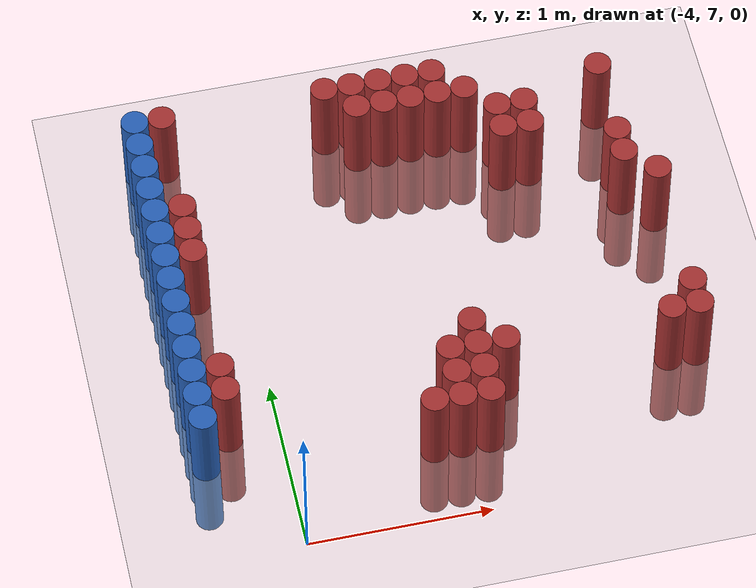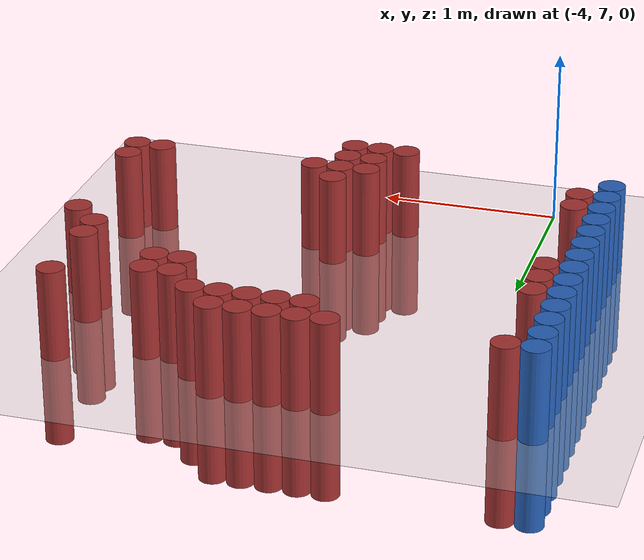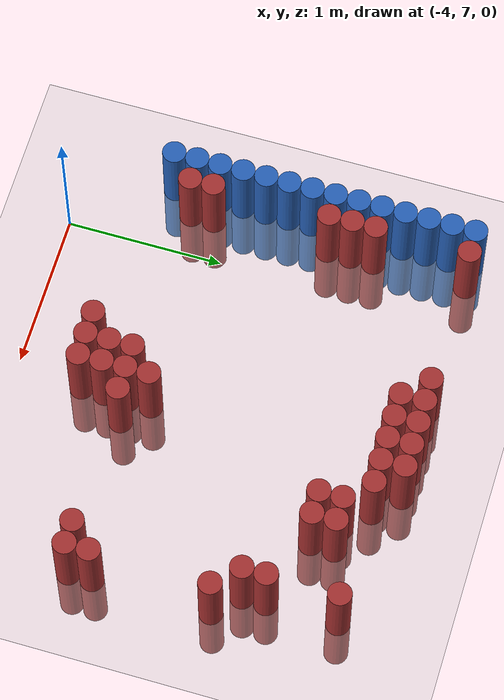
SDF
<sdf version="1.6">
 <world name="default">
  <model name="ground_plane">
   <static>1</static>
   <link name="link">
    <collision name="collision">
     <geometry><plane><normal>0 0 1</normal><size>100 100</size></plane></geometry>
     <surface><friction><ode><mu>100</mu><mu2>50</mu2></ode></friction></surface>
    </collision>
    <visual name="visual">
     <cast_shadows>0</cast_shadows>
     <geometry><plane><normal>0 0 1</normal><size>100 100</size></plane></geometry>
     <material>
      <script><uri>file://media/materials/scripts/gazebo.material</uri><name>Gazebo/Grey</name></script>
     </material>
    </visual>
   </link>
  </model>
  <model name="unit_cylinder_112">
   <static>1</static>
   <pose>-4.425000 7.575000 0.000000 0.000000 0.000000 0.000000</pose>
   <link name="link">
    <inertial>
     <mass>1</mass>
     <inertia><ixx>0.145833</ixx><ixy>0</ixy><ixz>0</ixz><iyy>0.145833</iyy><iyz>0</iyz><izz>0.125</izz></inertia>
    </inertial>
    <collision name="collision">
     <geometry><cylinder><radius>0.075000</radius><length>1</length></cylinder></geometry>
    </collision>
    <visual name="visual">
     <geometry><cylinder><radius>0.075000</radius><length>1</length></cylinder></geometry>
     <material>
      <ambient>0.152000 0.379000 0.720000 1</ambient>
      <diffuse>0.152000 0.379000 0.720000 1</diffuse>
     </material>
     <material>
      <script><name>Gazebo/Grey</name><uri>file://media/materials/scripts/gazebo.material</uri></script>
     </material>
    </visual>
   </link>
  </model>
  <model name="unit_cylinder_113">
   <static>1</static>
   <pose>-4.425000 7.725000 0.000000 0.000000 0.000000 0.000000</pose>
   <link name="link">
    <inertial>
     <mass>1</mass>
     <inertia><ixx>0.145833</ixx><ixy>0</ixy><ixz>0</ixz><iyy>0.145833</iyy><iyz>0</iyz><izz>0.125</izz></inertia>
    </inertial>
    <collision name="collision">
     <geometry><cylinder><radius>0.075000</radius><length>1</length></cylinder></geometry>
    </collision>
    <visual name="visual">
     <geometry><cylinder><radius>0.075000</radius><length>1</length></cylinder></geometry>
     <material>
      <ambient>0.152000 0.379000 0.720000 1</ambient>
      <diffuse>0.152000 0.379000 0.720000 1</diffuse>
     </material>
     <material>
      <script><name>Gazebo/Grey</name><uri>file://media/materials/scripts/gazebo.material</uri></script>
     </material>
    </visual>
   </link>
  </model>
  <model name="unit_cylinder_114">
   <static>1</static>
   <pose>-4.425000 7.875000 0.000000 0.000000 0.000000 0.000000</pose>
   <link name="link">
    <inertial>
     <mass>1</mass>
     <inertia><ixx>0.145833</ixx><ixy>0</ixy><ixz>0</ixz><iyy>0.145833</iyy><iyz>0</iyz><izz>0.125</izz></inertia>
    </inertial>
    <collision name="collision">
     <geometry><cylinder><radius>0.075000</radius><length>1</length></cylinder></geometry>
    </collision>
    <visual name="visual">
     <geometry><cylinder><radius>0.075000</radius><length>1</length></cylinder></geometry>
     <material>
      <ambient>0.152000 0.379000 0.720000 1</ambient>
      <diffuse>0.152000 0.379000 0.720000 1</diffuse>
     </material>
     <material>
      <script><name>Gazebo/Grey</name><uri>file://media/materials/scripts/gazebo.material</uri></script>
     </material>
    </visual>
   </link>
  </model>
  <model name="unit_cylinder_115">
   <static>1</static>
   <pose>-4.425000 8.025000 0.000000 0.000000 0.000000 0.000000</pose>
   <link name="link">
    <inertial>
     <mass>1</mass>
     <inertia><ixx>0.145833</ixx><ixy>0</ixy><ixz>0</ixz><iyy>0.145833</iyy><iyz>0</iyz><izz>0.125</izz></inertia>
    </inertial>
    <collision name="collision">
     <geometry><cylinder><radius>0.075000</radius><length>1</length></cylinder></geometry>
    </collision>
    <visual name="visual">
     <geometry><cylinder><radius>0.075000</radius><length>1</length></cylinder></geometry>
     <material>
      <ambient>0.152000 0.379000 0.720000 1</ambient>
      <diffuse>0.152000 0.379000 0.720000 1</diffuse>
     </material>
     <material>
      <script><name>Gazebo/Grey</name><uri>file://media/materials/scripts/gazebo.material</uri></script>
     </material>
    </visual>
   </link>
  </model>
  <model name="unit_cylinder_116">
   <static>1</static>
   <pose>-4.425000 8.175000 0.000000 0.000000 0.000000 0.000000</pose>
   <link name="link">
    <inertial>
     <mass>1</mass>
     <inertia><ixx>0.145833</ixx><ixy>0</ixy><ixz>0</ixz><iyy>0.145833</iyy><iyz>0</iyz><izz>0.125</izz></inertia>
    </inertial>
    <collision name="collision">
     <geometry><cylinder><radius>0.075000</radius><length>1</length></cylinder></geometry>
    </collision>
    <visual name="visual">
     <geometry><cylinder><radius>0.075000</radius><length>1</length></cylinder></geometry>
     <material>
      <ambient>0.152000 0.379000 0.720000 1</ambient>
      <diffuse>0.152000 0.379000 0.720000 1</diffuse>
     </material>
     <material>
      <script><name>Gazebo/Grey</name><uri>file://media/materials/scripts/gazebo.material</uri></script>
     </material>
    </visual>
   </link>
  </model>
  <model name="unit_cylinder_117">
   <static>1</static>
   <pose>-4.425000 8.325000 0.000000 0.000000 0.000000 0.000000</pose>
   <link name="link">
    <inertial>
     <mass>1</mass>
     <inertia><ixx>0.145833</ixx><ixy>0</ixy><ixz>0</ixz><iyy>0.145833</iyy><iyz>0</iyz><izz>0.125</izz></inertia>
    </inertial>
    <collision name="collision">
     <geometry><cylinder><radius>0.075000</radius><length>1</length></cylinder></geometry>
    </collision>
    <visual name="visual">
     <geometry><cylinder><radius>0.075000</radius><length>1</length></cylinder></geometry>
     <material>
      <ambient>0.152000 0.379000 0.720000 1</ambient>
      <diffuse>0.152000 0.379000 0.720000 1</diffuse>
     </material>
     <material>
      <script><name>Gazebo/Grey</name><uri>file://media/materials/scripts/gazebo.material</uri></script>
     </material>
    </visual>
   </link>
  </model>
  <model name="unit_cylinder_118">
   <static>1</static>
   <pose>-4.425000 8.475000 0.000000 0.000000 0.000000 0.000000</pose>
   <link name="link">
    <inertial>
     <mass>1</mass>
     <inertia><ixx>0.145833</ixx><ixy>0</ixy><ixz>0</ixz><iyy>0.145833</iyy><iyz>0</iyz><izz>0.125</izz></inertia>
    </inertial>
    <collision name="collision">
     <geometry><cylinder><radius>0.075000</radius><length>1</length></cylinder></geometry>
    </collision>
    <visual name="visual">
     <geometry><cylinder><radius>0.075000</radius><length>1</length></cylinder></geometry>
     <material>
      <ambient>0.152000 0.379000 0.720000 1</ambient>
      <diffuse>0.152000 0.379000 0.720000 1</diffuse>
     </material>
     <material>
      <script><name>Gazebo/Grey</name><uri>file://media/materials/scripts/gazebo.material</uri></script>
     </material>
    </visual>
   </link>
  </model>
  <model name="unit_cylinder_119">
   <static>1</static>
   <pose>-4.425000 8.625000 0.000000 0.000000 0.000000 0.000000</pose>
   <link name="link">
    <inertial>
     <mass>1</mass>
     <inertia><ixx>0.145833</ixx><ixy>0</ixy><ixz>0</ixz><iyy>0.145833</iyy><iyz>0</iyz><izz>0.125</izz></inertia>
    </inertial>
    <collision name="collision">
     <geometry><cylinder><radius>0.075000</radius><length>1</length></cylinder></geometry>
    </collision>
    <visual name="visual">
     <geometry><cylinder><radius>0.075000</radius><length>1</length></cylinder></geometry>
     <material>
      <ambient>0.152000 0.379000 0.720000 1</ambient>
      <diffuse>0.152000 0.379000 0.720000 1</diffuse>
     </material>
     <material>
      <script><name>Gazebo/Grey</name><uri>file://media/materials/scripts/gazebo.material</uri></script>
     </material>
    </visual>
   </link>
  </model>
  <model name="unit_cylinder_120">
   <static>1</static>
   <pose>-4.425000 8.775000 0.000000 0.000000 0.000000 0.000000</pose>
   <link name="link">
    <inertial>
     <mass>1</mass>
     <inertia><ixx>0.145833</ixx><ixy>0</ixy><ixz>0</ixz><iyy>0.145833</iyy><iyz>0</iyz><izz>0.125</izz></inertia>
    </inertial>
    <collision name="collision">
     <geometry><cylinder><radius>0.075000</radius><length>1</length></cylinder></geometry>
    </collision>
    <visual name="visual">
     <geometry><cylinder><radius>0.075000</radius><length>1</length></cylinder></geometry>
     <material>
      <ambient>0.152000 0.379000 0.720000 1</ambient>
      <diffuse>0.152000 0.379000 0.720000 1</diffuse>
     </material>
     <material>
      <script><name>Gazebo/Grey</name><uri>file://media/materials/scripts/gazebo.material</uri></script>
     </material>
    </visual>
   </link>
  </model>
  <model name="unit_cylinder_121">
   <static>1</static>
   <pose>-4.425000 8.925000 0.000000 0.000000 0.000000 0.000000</pose>
   <link name="link">
    <inertial>
     <mass>1</mass>
     <inertia><ixx>0.145833</ixx><ixy>0</ixy><ixz>0</ixz><iyy>0.145833</iyy><iyz>0</iyz><izz>0.125</izz></inertia>
    </inertial>
    <collision name="collision">
     <geometry><cylinder><radius>0.075000</radius><length>1</length></cylinder></geometry>
    </collision>
    <visual name="visual">
     <geometry><cylinder><radius>0.075000</radius><length>1</length></cylinder></geometry>
     <material>
      <ambient>0.152000 0.379000 0.720000 1</ambient>
      <diffuse>0.152000 0.379000 0.720000 1</diffuse>
     </material>
     <material>
      <script><name>Gazebo/Grey</name><uri>file://media/materials/scripts/gazebo.material</uri></script>
     </material>
    </visual>
   </link>
  </model>
  <model name="unit_cylinder_122">
   <static>1</static>
   <pose>-4.425000 9.075000 0.000000 0.000000 0.000000 0.000000</pose>
   <link name="link">
    <inertial>
     <mass>1</mass>
     <inertia><ixx>0.145833</ixx><ixy>0</ixy><ixz>0</ixz><iyy>0.145833</iyy><iyz>0</iyz><izz>0.125</izz></inertia>
    </inertial>
    <collision name="collision">
     <geometry><cylinder><radius>0.075000</radius><length>1</length></cylinder></geometry>
    </collision>
    <visual name="visual">
     <geometry><cylinder><radius>0.075000</radius><length>1</length></cylinder></geometry>
     <material>
      <ambient>0.152000 0.379000 0.720000 1</ambient>
      <diffuse>0.152000 0.379000 0.720000 1</diffuse>
     </material>
     <material>
      <script><name>Gazebo/Grey</name><uri>file://media/materials/scripts/gazebo.material</uri></script>
     </material>
    </visual>
   </link>
  </model>
  <model name="unit_cylinder_123">
   <static>1</static>
   <pose>-4.425000 9.225000 0.000000 0.000000 0.000000 0.000000</pose>
   <link name="link">
    <inertial>
     <mass>1</mass>
     <inertia><ixx>0.145833</ixx><ixy>0</ixy><ixz>0</ixz><iyy>0.145833</iyy><iyz>0</iyz><izz>0.125</izz></inertia>
    </inertial>
    <collision name="collision">
     <geometry><cylinder><radius>0.075000</radius><length>1</length></cylinder></geometry>
    </collision>
    <visual name="visual">
     <geometry><cylinder><radius>0.075000</radius><length>1</length></cylinder></geometry>
     <material>
      <ambient>0.152000 0.379000 0.720000 1</ambient>
      <diffuse>0.152000 0.379000 0.720000 1</diffuse>
     </material>
     <material>
      <script><name>Gazebo/Grey</name><uri>file://media/materials/scripts/gazebo.material</uri></script>
     </material>
    </visual>
   </link>
  </model>
  <model name="unit_cylinder_124">
   <static>1</static>
   <pose>-4.425000 9.375000 0.000000 0.000000 0.000000 0.000000</pose>
   <link name="link">
    <inertial>
     <mass>1</mass>
     <inertia><ixx>0.145833</ixx><ixy>0</ixy><ixz>0</ixz><iyy>0.145833</iyy><iyz>0</iyz><izz>0.125</izz></inertia>
    </inertial>
    <collision name="collision">
     <geometry><cylinder><radius>0.075000</radius><length>1</length></cylinder></geometry>
    </collision>
    <visual name="visual">
     <geometry><cylinder><radius>0.075000</radius><length>1</length></cylinder></geometry>
     <material>
      <ambient>0.152000 0.379000 0.720000 1</ambient>
      <diffuse>0.152000 0.379000 0.720000 1</diffuse>
     </material>
     <material>
      <script><name>Gazebo/Grey</name><uri>file://media/materials/scripts/gazebo.material</uri></script>
     </material>
    </visual>
   </link>
  </model>
  <model name="unit_cylinder_125">
   <static>1</static>
   <pose>-4.425000 9.525000 0.000000 0.000000 0.000000 0.000000</pose>
   <link name="link">
    <inertial>
     <mass>1</mass>
     <inertia><ixx>0.145833</ixx><ixy>0</ixy><ixz>0</ixz><iyy>0.145833</iyy><iyz>0</iyz><izz>0.125</izz></inertia>
    </inertial>
    <collision name="collision">
     <geometry><cylinder><radius>0.075000</radius><length>1</length></cylinder></geometry>
    </collision>
    <visual name="visual">
     <geometry><cylinder><radius>0.075000</radius><length>1</length></cylinder></geometry>
     <material>
      <ambient>0.152000 0.379000 0.720000 1</ambient>
      <diffuse>0.152000 0.379000 0.720000 1</diffuse>
     </material>
     <material>
      <script><name>Gazebo/Grey</name><uri>file://media/materials/scripts/gazebo.material</uri></script>
     </material>
    </visual>
   </link>
  </model>
  <model name="unit_cylinder_132">
   <static>1</static>
   <pose>-4.275000 7.725000 0.000000 0.000000 0.000000 0.000000</pose>
   <link name="link">
    <inertial>
     <mass>1</mass>
     <inertia><ixx>0.145833</ixx><ixy>0</ixy><ixz>0</ixz><iyy>0.145833</iyy><iyz>0</iyz><izz>0.125</izz></inertia>
    </inertial>
    <collision name="collision">
     <geometry><cylinder><radius>0.075000</radius><length>1</length></cylinder></geometry>
    </collision>
    <visual name="visual">
     <geometry><cylinder><radius>0.075000</radius><length>1</length></cylinder></geometry>
     <material>
      <ambient>0.648000 0.192000 0.192000 1</ambient>
      <diffuse>0.648000 0.192000 0.192000 1</diffuse>
     </material>
     <material>
      <script><name>Gazebo/Grey</name><uri>file://media/materials/scripts/gazebo.material</uri></script>
     </material>
    </visual>
   </link>
  </model>
  <model name="unit_cylinder_133">
   <static>1</static>
   <pose>-4.275000 7.875000 0.000000 0.000000 0.000000 0.000000</pose>
   <link name="link">
    <inertial>
     <mass>1</mass>
     <inertia><ixx>0.145833</ixx><ixy>0</ixy><ixz>0</ixz><iyy>0.145833</iyy><iyz>0</iyz><izz>0.125</izz></inertia>
    </inertial>
    <collision name="collision">
     <geometry><cylinder><radius>0.075000</radius><length>1</length></cylinder></geometry>
    </collision>
    <visual name="visual">
     <geometry><cylinder><radius>0.075000</radius><length>1</length></cylinder></geometry>
     <material>
      <ambient>0.648000 0.192000 0.192000 1</ambient>
      <diffuse>0.648000 0.192000 0.192000 1</diffuse>
     </material>
     <material>
      <script><name>Gazebo/Grey</name><uri>file://media/materials/scripts/gazebo.material</uri></script>
     </material>
    </visual>
   </link>
  </model>
  <model name="unit_cylinder_134">
   <static>1</static>
   <pose>-4.275000 8.625000 0.000000 0.000000 0.000000 0.000000</pose>
   <link name="link">
    <inertial>
     <mass>1</mass>
     <inertia><ixx>0.145833</ixx><ixy>0</ixy><ixz>0</ixz><iyy>0.145833</iyy><iyz>0</iyz><izz>0.125</izz></inertia>
    </inertial>
    <collision name="collision">
     <geometry><cylinder><radius>0.075000</radius><length>1</length></cylinder></geometry>
    </collision>
    <visual name="visual">
     <geometry><cylinder><radius>0.075000</radius><length>1</length></cylinder></geometry>
     <material>
      <ambient>0.648000 0.192000 0.192000 1</ambient>
      <diffuse>0.648000 0.192000 0.192000 1</diffuse>
     </material>
     <material>
      <script><name>Gazebo/Grey</name><uri>file://media/materials/scripts/gazebo.material</uri></script>
     </material>
    </visual>
   </link>
  </model>
  <model name="unit_cylinder_135">
   <static>1</static>
   <pose>-4.275000 8.775000 0.000000 0.000000 0.000000 0.000000</pose>
   <link name="link">
    <inertial>
     <mass>1</mass>
     <inertia><ixx>0.145833</ixx><ixy>0</ixy><ixz>0</ixz><iyy>0.145833</iyy><iyz>0</iyz><izz>0.125</izz></inertia>
    </inertial>
    <collision name="collision">
     <geometry><cylinder><radius>0.075000</radius><length>1</length></cylinder></geometry>
    </collision>
    <visual name="visual">
     <geometry><cylinder><radius>0.075000</radius><length>1</length></cylinder></geometry>
     <material>
      <ambient>0.648000 0.192000 0.192000 1</ambient>
      <diffuse>0.648000 0.192000 0.192000 1</diffuse>
     </material>
     <material>
      <script><name>Gazebo/Grey</name><uri>file://media/materials/scripts/gazebo.material</uri></script>
     </material>
    </visual>
   </link>
  </model>
  <model name="unit_cylinder_136">
   <static>1</static>
   <pose>-4.275000 8.925000 0.000000 0.000000 0.000000 0.000000</pose>
   <link name="link">
    <inertial>
     <mass>1</mass>
     <inertia><ixx>0.145833</ixx><ixy>0</ixy><ixz>0</ixz><iyy>0.145833</iyy><iyz>0</iyz><izz>0.125</izz></inertia>
    </inertial>
    <collision name="collision">
     <geometry><cylinder><radius>0.075000</radius><length>1</length></cylinder></geometry>
    </collision>
    <visual name="visual">
     <geometry><cylinder><radius>0.075000</radius><length>1</length></cylinder></geometry>
     <material>
      <ambient>0.648000 0.192000 0.192000 1</ambient>
      <diffuse>0.648000 0.192000 0.192000 1</diffuse>
     </material>
     <material>
      <script><name>Gazebo/Grey</name><uri>file://media/materials/scripts/gazebo.material</uri></script>
     </material>
    </visual>
   </link>
  </model>
  <model name="unit_cylinder_137">
   <static>1</static>
   <pose>-4.275000 9.525000 0.000000 0.000000 0.000000 0.000000</pose>
   <link name="link">
    <inertial>
     <mass>1</mass>
     <inertia><ixx>0.145833</ixx><ixy>0</ixy><ixz>0</ixz><iyy>0.145833</iyy><iyz>0</iyz><izz>0.125</izz></inertia>
    </inertial>
    <collision name="collision">
     <geometry><cylinder><radius>0.075000</radius><length>1</length></cylinder></geometry>
    </collision>
    <visual name="visual">
     <geometry><cylinder><radius>0.075000</radius><length>1</length></cylinder></geometry>
     <material>
      <ambient>0.648000 0.192000 0.192000 1</ambient>
      <diffuse>0.648000 0.192000 0.192000 1</diffuse>
     </material>
     <material>
      <script><name>Gazebo/Grey</name><uri>file://media/materials/scripts/gazebo.material</uri></script>
     </material>
    </visual>
   </link>
  </model>
  <model name="unit_cylinder_176">
   <static>1</static>
   <pose>-3.375000 9.525000 0.000000 0.000000 0.000000 0.000000</pose>
   <link name="link">
    <inertial>
     <mass>1</mass>
     <inertia><ixx>0.145833</ixx><ixy>0</ixy><ixz>0</ixz><iyy>0.145833</iyy><iyz>0</iyz><izz>0.125</izz></inertia>
    </inertial>
    <collision name="collision">
     <geometry><cylinder><radius>0.075000</radius><length>1</length></cylinder></geometry>
    </collision>
    <visual name="visual">
     <geometry><cylinder><radius>0.075000</radius><length>1</length></cylinder></geometry>
     <material>
      <ambient>0.648000 0.192000 0.192000 1</ambient>
      <diffuse>0.648000 0.192000 0.192000 1</diffuse>
     </material>
     <material>
      <script><name>Gazebo/Grey</name><uri>file://media/materials/scripts/gazebo.material</uri></script>
     </material>
    </visual>
   </link>
  </model>
  <model name="unit_cylinder_181">
   <static>1</static>
   <pose>-3.225000 7.425000 0.000000 0.000000 0.000000 0.000000</pose>
   <link name="link">
    <inertial>
     <mass>1</mass>
     <inertia><ixx>0.145833</ixx><ixy>0</ixy><ixz>0</ixz><iyy>0.145833</iyy><iyz>0</iyz><izz>0.125</izz></inertia>
    </inertial>
    <collision name="collision">
     <geometry><cylinder><radius>0.075000</radius><length>1</length></cylinder></geometry>
    </collision>
    <visual name="visual">
     <geometry><cylinder><radius>0.075000</radius><length>1</length></cylinder></geometry>
     <material>
      <ambient>0.648000 0.192000 0.192000 1</ambient>
      <diffuse>0.648000 0.192000 0.192000 1</diffuse>
     </material>
     <material>
      <script><name>Gazebo/Grey</name><uri>file://media/materials/scripts/gazebo.material</uri></script>
     </material>
    </visual>
   </link>
  </model>
  <model name="unit_cylinder_182">
   <static>1</static>
   <pose>-3.225000 9.375000 0.000000 0.000000 0.000000 0.000000</pose>
   <link name="link">
    <inertial>
     <mass>1</mass>
     <inertia><ixx>0.145833</ixx><ixy>0</ixy><ixz>0</ixz><iyy>0.145833</iyy><iyz>0</iyz><izz>0.125</izz></inertia>
    </inertial>
    <collision name="collision">
     <geometry><cylinder><radius>0.075000</radius><length>1</length></cylinder></geometry>
    </collision>
    <visual name="visual">
     <geometry><cylinder><radius>0.075000</radius><length>1</length></cylinder></geometry>
     <material>
      <ambient>0.648000 0.192000 0.192000 1</ambient>
      <diffuse>0.648000 0.192000 0.192000 1</diffuse>
     </material>
     <material>
      <script><name>Gazebo/Grey</name><uri>file://media/materials/scripts/gazebo.material</uri></script>
     </material>
    </visual>
   </link>
  </model>
  <model name="unit_cylinder_183">
   <static>1</static>
   <pose>-3.225000 9.525000 0.000000 0.000000 0.000000 0.000000</pose>
   <link name="link">
    <inertial>
     <mass>1</mass>
     <inertia><ixx>0.145833</ixx><ixy>0</ixy><ixz>0</ixz><iyy>0.145833</iyy><iyz>0</iyz><izz>0.125</izz></inertia>
    </inertial>
    <collision name="collision">
     <geometry><cylinder><radius>0.075000</radius><length>1</length></cylinder></geometry>
    </collision>
    <visual name="visual">
     <geometry><cylinder><radius>0.075000</radius><length>1</length></cylinder></geometry>
     <material>
      <ambient>0.648000 0.192000 0.192000 1</ambient>
      <diffuse>0.648000 0.192000 0.192000 1</diffuse>
     </material>
     <material>
      <script><name>Gazebo/Grey</name><uri>file://media/materials/scripts/gazebo.material</uri></script>
     </material>
    </visual>
   </link>
  </model>
  <model name="unit_cylinder_188">
   <static>1</static>
   <pose>-3.075000 7.425000 0.000000 0.000000 0.000000 0.000000</pose>
   <link name="link">
    <inertial>
     <mass>1</mass>
     <inertia><ixx>0.145833</ixx><ixy>0</ixy><ixz>0</ixz><iyy>0.145833</iyy><iyz>0</iyz><izz>0.125</izz></inertia>
    </inertial>
    <collision name="collision">
     <geometry><cylinder><radius>0.075000</radius><length>1</length></cylinder></geometry>
    </collision>
    <visual name="visual">
     <geometry><cylinder><radius>0.075000</radius><length>1</length></cylinder></geometry>
     <material>
      <ambient>0.648000 0.192000 0.192000 1</ambient>
      <diffuse>0.648000 0.192000 0.192000 1</diffuse>
     </material>
     <material>
      <script><name>Gazebo/Grey</name><uri>file://media/materials/scripts/gazebo.material</uri></script>
     </material>
    </visual>
   </link>
  </model>
  <model name="unit_cylinder_189">
   <static>1</static>
   <pose>-3.075000 7.575000 0.000000 0.000000 0.000000 0.000000</pose>
   <link name="link">
    <inertial>
     <mass>1</mass>
     <inertia><ixx>0.145833</ixx><ixy>0</ixy><ixz>0</ixz><iyy>0.145833</iyy><iyz>0</iyz><izz>0.125</izz></inertia>
    </inertial>
    <collision name="collision">
     <geometry><cylinder><radius>0.075000</radius><length>1</length></cylinder></geometry>
    </collision>
    <visual name="visual">
     <geometry><cylinder><radius>0.075000</radius><length>1</length></cylinder></geometry>
     <material>
      <ambient>0.648000 0.192000 0.192000 1</ambient>
      <diffuse>0.648000 0.192000 0.192000 1</diffuse>
     </material>
     <material>
      <script><name>Gazebo/Grey</name><uri>file://media/materials/scripts/gazebo.material</uri></script>
     </material>
    </visual>
   </link>
  </model>
  <model name="unit_cylinder_190">
   <static>1</static>
   <pose>-3.075000 7.725000 0.000000 0.000000 0.000000 0.000000</pose>
   <link name="link">
    <inertial>
     <mass>1</mass>
     <inertia><ixx>0.145833</ixx><ixy>0</ixy><ixz>0</ixz><iyy>0.145833</iyy><iyz>0</iyz><izz>0.125</izz></inertia>
    </inertial>
    <collision name="collision">
     <geometry><cylinder><radius>0.075000</radius><length>1</length></cylinder></geometry>
    </collision>
    <visual name="visual">
     <geometry><cylinder><radius>0.075000</radius><length>1</length></cylinder></geometry>
     <material>
      <ambient>0.648000 0.192000 0.192000 1</ambient>
      <diffuse>0.648000 0.192000 0.192000 1</diffuse>
     </material>
     <material>
      <script><name>Gazebo/Grey</name><uri>file://media/materials/scripts/gazebo.material</uri></script>
     </material>
    </visual>
   </link>
  </model>
  <model name="unit_cylinder_191">
   <static>1</static>
   <pose>-3.075000 9.375000 0.000000 0.000000 0.000000 0.000000</pose>
   <link name="link">
    <inertial>
     <mass>1</mass>
     <inertia><ixx>0.145833</ixx><ixy>0</ixy><ixz>0</ixz><iyy>0.145833</iyy><iyz>0</iyz><izz>0.125</izz></inertia>
    </inertial>
    <collision name="collision">
     <geometry><cylinder><radius>0.075000</radius><length>1</length></cylinder></geometry>
    </collision>
    <visual name="visual">
     <geometry><cylinder><radius>0.075000</radius><length>1</length></cylinder></geometry>
     <material>
      <ambient>0.648000 0.192000 0.192000 1</ambient>
      <diffuse>0.648000 0.192000 0.192000 1</diffuse>
     </material>
     <material>
      <script><name>Gazebo/Grey</name><uri>file://media/materials/scripts/gazebo.material</uri></script>
     </material>
    </visual>
   </link>
  </model>
  <model name="unit_cylinder_192">
   <static>1</static>
   <pose>-3.075000 9.525000 0.000000 0.000000 0.000000 0.000000</pose>
   <link name="link">
    <inertial>
     <mass>1</mass>
     <inertia><ixx>0.145833</ixx><ixy>0</ixy><ixz>0</ixz><iyy>0.145833</iyy><iyz>0</iyz><izz>0.125</izz></inertia>
    </inertial>
    <collision name="collision">
     <geometry><cylinder><radius>0.075000</radius><length>1</length></cylinder></geometry>
    </collision>
    <visual name="visual">
     <geometry><cylinder><radius>0.075000</radius><length>1</length></cylinder></geometry>
     <material>
      <ambient>0.648000 0.192000 0.192000 1</ambient>
      <diffuse>0.648000 0.192000 0.192000 1</diffuse>
     </material>
     <material>
      <script><name>Gazebo/Grey</name><uri>file://media/materials/scripts/gazebo.material</uri></script>
     </material>
    </visual>
   </link>
  </model>
  <model name="unit_cylinder_197">
   <static>1</static>
   <pose>-2.925000 7.425000 0.000000 0.000000 0.000000 0.000000</pose>
   <link name="link">
    <inertial>
     <mass>1</mass>
     <inertia><ixx>0.145833</ixx><ixy>0</ixy><ixz>0</ixz><iyy>0.145833</iyy><iyz>0</iyz><izz>0.125</izz></inertia>
    </inertial>
    <collision name="collision">
     <geometry><cylinder><radius>0.075000</radius><length>1</length></cylinder></geometry>
    </collision>
    <visual name="visual">
     <geometry><cylinder><radius>0.075000</radius><length>1</length></cylinder></geometry>
     <material>
      <ambient>0.648000 0.192000 0.192000 1</ambient>
      <diffuse>0.648000 0.192000 0.192000 1</diffuse>
     </material>
     <material>
      <script><name>Gazebo/Grey</name><uri>file://media/materials/scripts/gazebo.material</uri></script>
     </material>
    </visual>
   </link>
  </model>
  <model name="unit_cylinder_198">
   <static>1</static>
   <pose>-2.925000 7.575000 0.000000 0.000000 0.000000 0.000000</pose>
   <link name="link">
    <inertial>
     <mass>1</mass>
     <inertia><ixx>0.145833</ixx><ixy>0</ixy><ixz>0</ixz><iyy>0.145833</iyy><iyz>0</iyz><izz>0.125</izz></inertia>
    </inertial>
    <collision name="collision">
     <geometry><cylinder><radius>0.075000</radius><length>1</length></cylinder></geometry>
    </collision>
    <visual name="visual">
     <geometry><cylinder><radius>0.075000</radius><length>1</length></cylinder></geometry>
     <material>
      <ambient>0.648000 0.192000 0.192000 1</ambient>
      <diffuse>0.648000 0.192000 0.192000 1</diffuse>
     </material>
     <material>
      <script><name>Gazebo/Grey</name><uri>file://media/materials/scripts/gazebo.material</uri></script>
     </material>
    </visual>
   </link>
  </model>
  <model name="unit_cylinder_199">
   <static>1</static>
   <pose>-2.925000 7.725000 0.000000 0.000000 0.000000 0.000000</pose>
   <link name="link">
    <inertial>
     <mass>1</mass>
     <inertia><ixx>0.145833</ixx><ixy>0</ixy><ixz>0</ixz><iyy>0.145833</iyy><iyz>0</iyz><izz>0.125</izz></inertia>
    </inertial>
    <collision name="collision">
     <geometry><cylinder><radius>0.075000</radius><length>1</length></cylinder></geometry>
    </collision>
    <visual name="visual">
     <geometry><cylinder><radius>0.075000</radius><length>1</length></cylinder></geometry>
     <material>
      <ambient>0.648000 0.192000 0.192000 1</ambient>
      <diffuse>0.648000 0.192000 0.192000 1</diffuse>
     </material>
     <material>
      <script><name>Gazebo/Grey</name><uri>file://media/materials/scripts/gazebo.material</uri></script>
     </material>
    </visual>
   </link>
  </model>
  <model name="unit_cylinder_200">
   <static>1</static>
   <pose>-2.925000 7.875000 0.000000 0.000000 0.000000 0.000000</pose>
   <link name="link">
    <inertial>
     <mass>1</mass>
     <inertia><ixx>0.145833</ixx><ixy>0</ixy><ixz>0</ixz><iyy>0.145833</iyy><iyz>0</iyz><izz>0.125</izz></inertia>
    </inertial>
    <collision name="collision">
     <geometry><cylinder><radius>0.075000</radius><length>1</length></cylinder></geometry>
    </collision>
    <visual name="visual">
     <geometry><cylinder><radius>0.075000</radius><length>1</length></cylinder></geometry>
     <material>
      <ambient>0.648000 0.192000 0.192000 1</ambient>
      <diffuse>0.648000 0.192000 0.192000 1</diffuse>
     </material>
     <material>
      <script><name>Gazebo/Grey</name><uri>file://media/materials/scripts/gazebo.material</uri></script>
     </material>
    </visual>
   </link>
  </model>
  <model name="unit_cylinder_201">
   <static>1</static>
   <pose>-2.925000 9.375000 0.000000 0.000000 0.000000 0.000000</pose>
   <link name="link">
    <inertial>
     <mass>1</mass>
     <inertia><ixx>0.145833</ixx><ixy>0</ixy><ixz>0</ixz><iyy>0.145833</iyy><iyz>0</iyz><izz>0.125</izz></inertia>
    </inertial>
    <collision name="collision">
     <geometry><cylinder><radius>0.075000</radius><length>1</length></cylinder></geometry>
    </collision>
    <visual name="visual">
     <geometry><cylinder><radius>0.075000</radius><length>1</length></cylinder></geometry>
     <material>
      <ambient>0.648000 0.192000 0.192000 1</ambient>
      <diffuse>0.648000 0.192000 0.192000 1</diffuse>
     </material>
     <material>
      <script><name>Gazebo/Grey</name><uri>file://media/materials/scripts/gazebo.material</uri></script>
     </material>
    </visual>
   </link>
  </model>
  <model name="unit_cylinder_202">
   <static>1</static>
   <pose>-2.925000 9.525000 0.000000 0.000000 0.000000 0.000000</pose>
   <link name="link">
    <inertial>
     <mass>1</mass>
     <inertia><ixx>0.145833</ixx><ixy>0</ixy><ixz>0</ixz><iyy>0.145833</iyy><iyz>0</iyz><izz>0.125</izz></inertia>
    </inertial>
    <collision name="collision">
     <geometry><cylinder><radius>0.075000</radius><length>1</length></cylinder></geometry>
    </collision>
    <visual name="visual">
     <geometry><cylinder><radius>0.075000</radius><length>1</length></cylinder></geometry>
     <material>
      <ambient>0.648000 0.192000 0.192000 1</ambient>
      <diffuse>0.648000 0.192000 0.192000 1</diffuse>
     </material>
     <material>
      <script><name>Gazebo/Grey</name><uri>file://media/materials/scripts/gazebo.material</uri></script>
     </material>
    </visual>
   </link>
  </model>
  <model name="unit_cylinder_207">
   <static>1</static>
   <pose>-2.775000 7.725000 0.000000 0.000000 0.000000 0.000000</pose>
   <link name="link">
    <inertial>
     <mass>1</mass>
     <inertia><ixx>0.145833</ixx><ixy>0</ixy><ixz>0</ixz><iyy>0.145833</iyy><iyz>0</iyz><izz>0.125</izz></inertia>
    </inertial>
    <collision name="collision">
     <geometry><cylinder><radius>0.075000</radius><length>1</length></cylinder></geometry>
    </collision>
    <visual name="visual">
     <geometry><cylinder><radius>0.075000</radius><length>1</length></cylinder></geometry>
     <material>
      <ambient>0.648000 0.192000 0.192000 1</ambient>
      <diffuse>0.648000 0.192000 0.192000 1</diffuse>
     </material>
     <material>
      <script><name>Gazebo/Grey</name><uri>file://media/materials/scripts/gazebo.material</uri></script>
     </material>
    </visual>
   </link>
  </model>
  <model name="unit_cylinder_208">
   <static>1</static>
   <pose>-2.775000 9.375000 0.000000 0.000000 0.000000 0.000000</pose>
   <link name="link">
    <inertial>
     <mass>1</mass>
     <inertia><ixx>0.145833</ixx><ixy>0</ixy><ixz>0</ixz><iyy>0.145833</iyy><iyz>0</iyz><izz>0.125</izz></inertia>
    </inertial>
    <collision name="collision">
     <geometry><cylinder><radius>0.075000</radius><length>1</length></cylinder></geometry>
    </collision>
    <visual name="visual">
     <geometry><cylinder><radius>0.075000</radius><length>1</length></cylinder></geometry>
     <material>
      <ambient>0.648000 0.192000 0.192000 1</ambient>
      <diffuse>0.648000 0.192000 0.192000 1</diffuse>
     </material>
     <material>
      <script><name>Gazebo/Grey</name><uri>file://media/materials/scripts/gazebo.material</uri></script>
     </material>
    </visual>
   </link>
  </model>
  <model name="unit_cylinder_209">
   <static>1</static>
   <pose>-2.775000 9.525000 0.000000 0.000000 0.000000 0.000000</pose>
   <link name="link">
    <inertial>
     <mass>1</mass>
     <inertia><ixx>0.145833</ixx><ixy>0</ixy><ixz>0</ixz><iyy>0.145833</iyy><iyz>0</iyz><izz>0.125</izz></inertia>
    </inertial>
    <collision name="collision">
     <geometry><cylinder><radius>0.075000</radius><length>1</length></cylinder></geometry>
    </collision>
    <visual name="visual">
     <geometry><cylinder><radius>0.075000</radius><length>1</length></cylinder></geometry>
     <material>
      <ambient>0.648000 0.192000 0.192000 1</ambient>
      <diffuse>0.648000 0.192000 0.192000 1</diffuse>
     </material>
     <material>
      <script><name>Gazebo/Grey</name><uri>file://media/materials/scripts/gazebo.material</uri></script>
     </material>
    </visual>
   </link>
  </model>
  <model name="unit_cylinder_214">
   <static>1</static>
   <pose>-2.625000 9.375000 0.000000 0.000000 0.000000 0.000000</pose>
   <link name="link">
    <inertial>
     <mass>1</mass>
     <inertia><ixx>0.145833</ixx><ixy>0</ixy><ixz>0</ixz><iyy>0.145833</iyy><iyz>0</iyz><izz>0.125</izz></inertia>
    </inertial>
    <collision name="collision">
     <geometry><cylinder><radius>0.075000</radius><length>1</length></cylinder></geometry>
    </collision>
    <visual name="visual">
     <geometry><cylinder><radius>0.075000</radius><length>1</length></cylinder></geometry>
     <material>
      <ambient>0.648000 0.192000 0.192000 1</ambient>
      <diffuse>0.648000 0.192000 0.192000 1</diffuse>
     </material>
     <material>
      <script><name>Gazebo/Grey</name><uri>file://media/materials/scripts/gazebo.material</uri></script>
     </material>
    </visual>
   </link>
  </model>
  <model name="unit_cylinder_219">
   <static>1</static>
   <pose>-2.475000 9.075000 0.000000 0.000000 0.000000 0.000000</pose>
   <link name="link">
    <inertial>
     <mass>1</mass>
     <inertia><ixx>0.145833</ixx><ixy>0</ixy><ixz>0</ixz><iyy>0.145833</iyy><iyz>0</iyz><izz>0.125</izz></inertia>
    </inertial>
    <collision name="collision">
     <geometry><cylinder><radius>0.075000</radius><length>1</length></cylinder></geometry>
    </collision>
    <visual name="visual">
     <geometry><cylinder><radius>0.075000</radius><length>1</length></cylinder></geometry>
     <material>
      <ambient>0.648000 0.192000 0.192000 1</ambient>
      <diffuse>0.648000 0.192000 0.192000 1</diffuse>
     </material>
     <material>
      <script><name>Gazebo/Grey</name><uri>file://media/materials/scripts/gazebo.material</uri></script>
     </material>
    </visual>
   </link>
  </model>
  <model name="unit_cylinder_220">
   <static>1</static>
   <pose>-2.475000 9.225000 0.000000 0.000000 0.000000 0.000000</pose>
   <link name="link">
    <inertial>
     <mass>1</mass>
     <inertia><ixx>0.145833</ixx><ixy>0</ixy><ixz>0</ixz><iyy>0.145833</iyy><iyz>0</iyz><izz>0.125</izz></inertia>
    </inertial>
    <collision name="collision">
     <geometry><cylinder><radius>0.075000</radius><length>1</length></cylinder></geometry>
    </collision>
    <visual name="visual">
     <geometry><cylinder><radius>0.075000</radius><length>1</length></cylinder></geometry>
     <material>
      <ambient>0.648000 0.192000 0.192000 1</ambient>
      <diffuse>0.648000 0.192000 0.192000 1</diffuse>
     </material>
     <material>
      <script><name>Gazebo/Grey</name><uri>file://media/materials/scripts/gazebo.material</uri></script>
     </material>
    </visual>
   </link>
  </model>
  <model name="unit_cylinder_223">
   <static>1</static>
   <pose>-2.325000 9.075000 0.000000 0.000000 0.000000 0.000000</pose>
   <link name="link">
    <inertial>
     <mass>1</mass>
     <inertia><ixx>0.145833</ixx><ixy>0</ixy><ixz>0</ixz><iyy>0.145833</iyy><iyz>0</iyz><izz>0.125</izz></inertia>
    </inertial>
    <collision name="collision">
     <geometry><cylinder><radius>0.075000</radius><length>1</length></cylinder></geometry>
    </collision>
    <visual name="visual">
     <geometry><cylinder><radius>0.075000</radius><length>1</length></cylinder></geometry>
     <material>
      <ambient>0.648000 0.192000 0.192000 1</ambient>
      <diffuse>0.648000 0.192000 0.192000 1</diffuse>
     </material>
     <material>
      <script><name>Gazebo/Grey</name><uri>file://media/materials/scripts/gazebo.material</uri></script>
     </material>
    </visual>
   </link>
  </model>
  <model name="unit_cylinder_224">
   <static>1</static>
   <pose>-2.325000 9.225000 0.000000 0.000000 0.000000 0.000000</pose>
   <link name="link">
    <inertial>
     <mass>1</mass>
     <inertia><ixx>0.145833</ixx><ixy>0</ixy><ixz>0</ixz><iyy>0.145833</iyy><iyz>0</iyz><izz>0.125</izz></inertia>
    </inertial>
    <collision name="collision">
     <geometry><cylinder><radius>0.075000</radius><length>1</length></cylinder></geometry>
    </collision>
    <visual name="visual">
     <geometry><cylinder><radius>0.075000</radius><length>1</length></cylinder></geometry>
     <material>
      <ambient>0.648000 0.192000 0.192000 1</ambient>
      <diffuse>0.648000 0.192000 0.192000 1</diffuse>
     </material>
     <material>
      <script><name>Gazebo/Grey</name><uri>file://media/materials/scripts/gazebo.material</uri></script>
     </material>
    </visual>
   </link>
  </model>
  <model name="unit_cylinder_226">
   <static>1</static>
   <pose>-1.875000 7.725000 0.000000 0.000000 0.000000 0.000000</pose>
   <link name="link">
    <inertial>
     <mass>1</mass>
     <inertia><ixx>0.145833</ixx><ixy>0</ixy><ixz>0</ixz><iyy>0.145833</iyy><iyz>0</iyz><izz>0.125</izz></inertia>
    </inertial>
    <collision name="collision">
     <geometry><cylinder><radius>0.075000</radius><length>1</length></cylinder></geometry>
    </collision>
    <visual name="visual">
     <geometry><cylinder><radius>0.075000</radius><length>1</length></cylinder></geometry>
     <material>
      <ambient>0.648000 0.192000 0.192000 1</ambient>
      <diffuse>0.648000 0.192000 0.192000 1</diffuse>
     </material>
     <material>
      <script><name>Gazebo/Grey</name><uri>file://media/materials/scripts/gazebo.material</uri></script>
     </material>
    </visual>
   </link>
  </model>
  <model name="unit_cylinder_227">
   <static>1</static>
   <pose>-1.875000 8.775000 0.000000 0.000000 0.000000 0.000000</pose>
   <link name="link">
    <inertial>
     <mass>1</mass>
     <inertia><ixx>0.145833</ixx><ixy>0</ixy><ixz>0</ixz><iyy>0.145833</iyy><iyz>0</iyz><izz>0.125</izz></inertia>
    </inertial>
    <collision name="collision">
     <geometry><cylinder><radius>0.075000</radius><length>1</length></cylinder></geometry>
    </collision>
    <visual name="visual">
     <geometry><cylinder><radius>0.075000</radius><length>1</length></cylinder></geometry>
     <material>
      <ambient>0.648000 0.192000 0.192000 1</ambient>
      <diffuse>0.648000 0.192000 0.192000 1</diffuse>
     </material>
     <material>
      <script><name>Gazebo/Grey</name><uri>file://media/materials/scripts/gazebo.material</uri></script>
     </material>
    </visual>
   </link>
  </model>
  <model name="unit_cylinder_228">
   <static>1</static>
   <pose>-1.875000 8.925000 0.000000 0.000000 0.000000 0.000000</pose>
   <link name="link">
    <inertial>
     <mass>1</mass>
     <inertia><ixx>0.145833</ixx><ixy>0</ixy><ixz>0</ixz><iyy>0.145833</iyy><iyz>0</iyz><izz>0.125</izz></inertia>
    </inertial>
    <collision name="collision">
     <geometry><cylinder><radius>0.075000</radius><length>1</length></cylinder></geometry>
    </collision>
    <visual name="visual">
     <geometry><cylinder><radius>0.075000</radius><length>1</length></cylinder></geometry>
     <material>
      <ambient>0.648000 0.192000 0.192000 1</ambient>
      <diffuse>0.648000 0.192000 0.192000 1</diffuse>
     </material>
     <material>
      <script><name>Gazebo/Grey</name><uri>file://media/materials/scripts/gazebo.material</uri></script>
     </material>
    </visual>
   </link>
  </model>
  <model name="unit_cylinder_229">
   <static>1</static>
   <pose>-1.875000 9.375000 0.000000 0.000000 0.000000 0.000000</pose>
   <link name="link">
    <inertial>
     <mass>1</mass>
     <inertia><ixx>0.145833</ixx><ixy>0</ixy><ixz>0</ixz><iyy>0.145833</iyy><iyz>0</iyz><izz>0.125</izz></inertia>
    </inertial>
    <collision name="collision">
     <geometry><cylinder><radius>0.075000</radius><length>1</length></cylinder></geometry>
    </collision>
    <visual name="visual">
     <geometry><cylinder><radius>0.075000</radius><length>1</length></cylinder></geometry>
     <material>
      <ambient>0.648000 0.192000 0.192000 1</ambient>
      <diffuse>0.648000 0.192000 0.192000 1</diffuse>
     </material>
     <material>
      <script><name>Gazebo/Grey</name><uri>file://media/materials/scripts/gazebo.material</uri></script>
     </material>
    </visual>
   </link>
  </model>
  <model name="unit_cylinder_230">
   <static>1</static>
   <pose>-1.725000 7.725000 0.000000 0.000000 0.000000 0.000000</pose>
   <link name="link">
    <inertial>
     <mass>1</mass>
     <inertia><ixx>0.145833</ixx><ixy>0</ixy><ixz>0</ixz><iyy>0.145833</iyy><iyz>0</iyz><izz>0.125</izz></inertia>
    </inertial>
    <collision name="collision">
     <geometry><cylinder><radius>0.075000</radius><length>1</length></cylinder></geometry>
    </collision>
    <visual name="visual">
     <geometry><cylinder><radius>0.075000</radius><length>1</length></cylinder></geometry>
     <material>
      <ambient>0.648000 0.192000 0.192000 1</ambient>
      <diffuse>0.648000 0.192000 0.192000 1</diffuse>
     </material>
     <material>
      <script><name>Gazebo/Grey</name><uri>file://media/materials/scripts/gazebo.material</uri></script>
     </material>
    </visual>
   </link>
  </model>
  <model name="unit_cylinder_231">
   <static>1</static>
   <pose>-1.725000 7.875000 0.000000 0.000000 0.000000 0.000000</pose>
   <link name="link">
    <inertial>
     <mass>1</mass>
     <inertia><ixx>0.145833</ixx><ixy>0</ixy><ixz>0</ixz><iyy>0.145833</iyy><iyz>0</iyz><izz>0.125</izz></inertia>
    </inertial>
    <collision name="collision">
     <geometry><cylinder><radius>0.075000</radius><length>1</length></cylinder></geometry>
    </collision>
    <visual name="visual">
     <geometry><cylinder><radius>0.075000</radius><length>1</length></cylinder></geometry>
     <material>
      <ambient>0.648000 0.192000 0.192000 1</ambient>
      <diffuse>0.648000 0.192000 0.192000 1</diffuse>
     </material>
     <material>
      <script><name>Gazebo/Grey</name><uri>file://media/materials/scripts/gazebo.material</uri></script>
     </material>
    </visual>
   </link>
  </model>
  <model name="unit_cylinder_232">
   <static>1</static>
   <pose>-1.725000 8.625000 0.000000 0.000000 0.000000 0.000000</pose>
   <link name="link">
    <inertial>
     <mass>1</mass>
     <inertia><ixx>0.145833</ixx><ixy>0</ixy><ixz>0</ixz><iyy>0.145833</iyy><iyz>0</iyz><izz>0.125</izz></inertia>
    </inertial>
    <collision name="collision">
     <geometry><cylinder><radius>0.075000</radius><length>1</length></cylinder></geometry>
    </collision>
    <visual name="visual">
     <geometry><cylinder><radius>0.075000</radius><length>1</length></cylinder></geometry>
     <material>
      <ambient>0.648000 0.192000 0.192000 1</ambient>
      <diffuse>0.648000 0.192000 0.192000 1</diffuse>
     </material>
     <material>
      <script><name>Gazebo/Grey</name><uri>file://media/materials/scripts/gazebo.material</uri></script>
     </material>
    </visual>
   </link>
  </model>
 </world>
</sdf>
